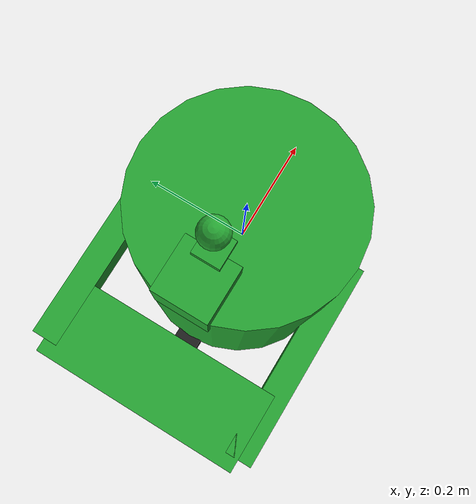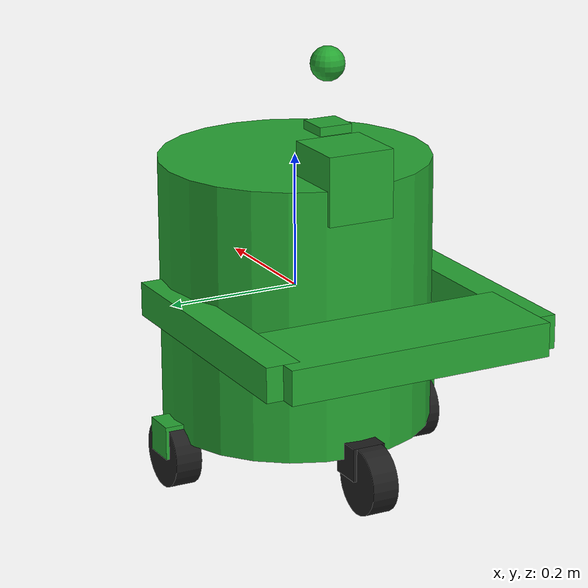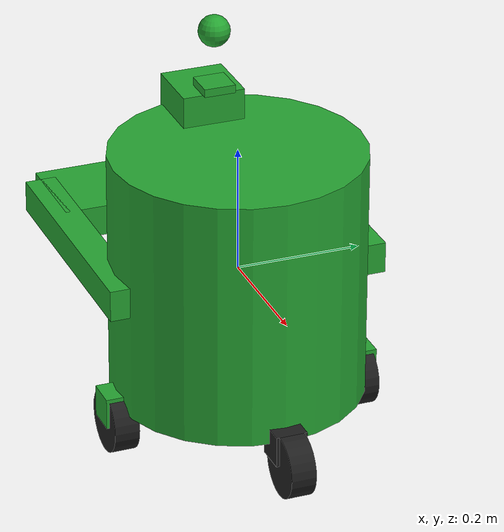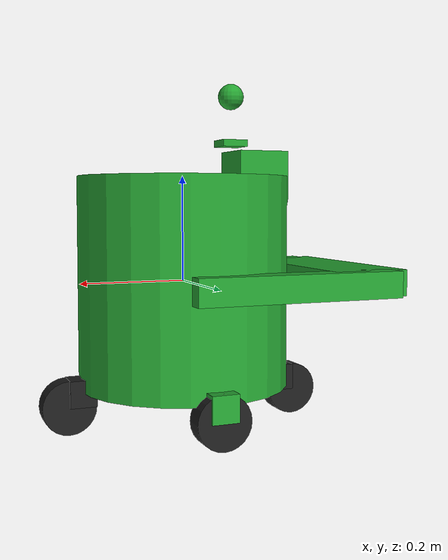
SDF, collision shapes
<?xml version='1.0'?>
<sdf version='1.6'>
  <model name='my_robot'>
    <link name='base_link'>
      <pose frame=''>0 0 0 0 -0 0</pose>
      <inertial>
        <pose frame=''>-0.028049 0 -0.047886 0 -0 0</pose>
        <mass>1.23</mass>
        <inertia>
          <ixx>0.0539737</ixx>
          <ixy>-1.94628e-19</ixy>
          <ixz>0.00406207</ixz>
          <iyy>0.0402643</iyy>
          <iyz>-3.32277e-19</iyz>
          <izz>0.043529</izz>
        </inertia>
      </inertial>
      <collision name='base_link_collision'>
        <pose frame=''>0 0 0 0 -0 0</pose>
        <geometry>
          <cylinder>
            <length>0.4</length>
            <radius>0.2</radius>
          </cylinder>
        </geometry>
        <surface>
          <contact>
            <ode/>
          </contact>
          <friction>
            <ode/>
          </friction>
        </surface>
      </collision>
      <collision name='base_link_fixed_joint_lump__camera_protrude_collision_1'>
        <pose frame=''>-0.1 0 0.265 0 -0 0</pose>
        <geometry>
          <box>
            <size>0.05 0.05 0.013</size>
          </box>
        </geometry>
        <surface>
          <contact>
            <ode/>
          </contact>
          <friction>
            <ode/>
          </friction>
        </surface>
      </collision>
      <collision name='base_link_fixed_joint_lump__camera_collision_2'>
        <pose frame=''>-0.1 0 0.355 0 -0 3.14</pose>
        <geometry>
          <sphere>
            <radius>0.025</radius>
          </sphere>
        </geometry>
        <surface>
          <contact>
            <ode/>
          </contact>
          <friction>
            <ode/>
          </friction>
        </surface>
      </collision>
      <collision name='base_link_fixed_joint_lump__left_castor_collision_3'>
        <pose frame=''>0 -0.2 -0.2 0 -0 0</pose>
        <geometry>
          <box>
            <size>0.05 0.05 0.05</size>
          </box>
        </geometry>
        <surface>
          <contact>
            <ode/>
          </contact>
          <friction>
            <ode/>
          </friction>
        </surface>
      </collision>
      <collision name='base_link_fixed_joint_lump__left_hand_collision_4'>
        <pose frame=''>-0.15 -0.2 0 0 -0 0</pose>
        <geometry>
          <box>
            <size>0.4 0.05 0.05</size>
          </box>
        </geometry>
        <surface>
          <contact>
            <ode/>
          </contact>
          <friction>
            <ode/>
          </friction>
        </surface>
      </collision>
      <collision name='base_link_fixed_joint_lump__lidar2D_collision_5'>
        <pose frame=''>-0.15 0 0.2 0 -0 3.14</pose>
        <geometry>
          <box>
            <size>0.1 0.1 0.1</size>
          </box>
        </geometry>
        <surface>
          <contact>
            <ode/>
          </contact>
          <friction>
            <ode/>
          </friction>
        </surface>
      </collision>
      <collision name='base_link_fixed_joint_lump__right_castor_collision_6'>
        <pose frame=''>0 0.2 -0.2 0 -0 0</pose>
        <geometry>
          <box>
            <size>0.05 0.05 0.05</size>
          </box>
        </geometry>
        <surface>
          <contact>
            <ode/>
          </contact>
          <friction>
            <ode/>
          </friction>
        </surface>
      </collision>
      <collision name='base_link_fixed_joint_lump__right_hand_collision_7'>
        <pose frame=''>-0.15 0.2 0 0 -0 0</pose>
        <geometry>
          <box>
            <size>0.4 0.05 0.05</size>
          </box>
        </geometry>
        <surface>
          <contact>
            <ode/>
          </contact>
          <friction>
            <ode/>
          </friction>
        </surface>
      </collision>
      <collision name='base_link_fixed_joint_lump__tray_collision_8'>
        <pose frame=''>-0.3 0 0 0 -0 0</pose>
        <geometry>
          <box>
            <size>0.15 0.4 0.05</size>
          </box>
        </geometry>
        <surface>
          <contact>
            <ode/>
          </contact>
          <friction>
            <ode/>
          </friction>
        </surface>
      </collision>
      <visual name='base_link_visual'>
        <pose frame=''>0 0 0 0 -0 0</pose>
        <geometry>
          <cylinder>
            <length>0.4</length>
            <radius>0.2</radius>
          </cylinder>
        </geometry>
        <material>
          <script>
            <name>Gazebo/Green</name>
            <uri>file://media/materials/scripts/gazebo.material</uri>
          </script>
        </material>
      </visual>
      <visual name='base_link_fixed_joint_lump__camera_protrude_visual_1'>
        <pose frame=''>-0.1 0 0.265 0 -0 0</pose>
        <geometry>
          <box>
            <size>0.05 0.05 0.13</size>
          </box>
        </geometry>
        <material>
          <script>
            <name>Gazebo/Blue</name>
            <uri>file://media/materials/scripts/gazebo.material</uri>
          </script>
        </material>
      </visual>
      <visual name='base_link_fixed_joint_lump__camera_visual_2'>
        <pose frame=''>-0.1 0 0.355 0 -0 3.14</pose>
        <geometry>
          <sphere>
            <radius>0.025</radius>
          </sphere>
        </geometry>
        <material>
          <script>
            <name>Gazebo/Yellow</name>
            <uri>file://media/materials/scripts/gazebo.material</uri>
          </script>
        </material>
      </visual>
      <visual name='base_link_fixed_joint_lump__left_castor_visual_3'>
        <pose frame=''>0 -0.2 -0.2 0 -0 0</pose>
        <geometry>
          <box>
            <size>0.05 0.05 0.05</size>
          </box>
        </geometry>
        <material>
          <script>
            <name>Gazebo/Black</name>
            <uri>file://media/materials/scripts/gazebo.material</uri>
          </script>
        </material>
      </visual>
      <visual name='base_link_fixed_joint_lump__left_hand_visual_4'>
        <pose frame=''>-0.15 -0.2 0 0 -0 0</pose>
        <geometry>
          <box>
            <size>0.4 0.05 0.05</size>
          </box>
        </geometry>
        <material>
          <script>
            <name>Gazebo/Orange</name>
            <uri>file://media/materials/scripts/gazebo.material</uri>
          </script>
        </material>
      </visual>
      <visual name='base_link_fixed_joint_lump__lidar2D_visual_5'>
        <pose frame=''>-0.15 0 0.2339 0 -0 3.14</pose>
        <geometry>
          <mesh>
            <scale>1 1 1</scale>
            <uri>model://ILRobot/meshes/lidar2D.dae</uri>
          </mesh>
        </geometry>
        <material>
          <script>
            <uri>__default__</uri>
            <name>__default__</name>
          </script>
        </material>
      </visual>
      <visual name='base_link_fixed_joint_lump__right_castor_visual_6'>
        <pose frame=''>0 0.2 -0.2 0 -0 0</pose>
        <geometry>
          <box>
            <size>0.05 0.05 0.05</size>
          </box>
        </geometry>
        <material>
          <script>
            <name>Gazebo/Black</name>
            <uri>file://media/materials/scripts/gazebo.material</uri>
          </script>
        </material>
      </visual>
      <visual name='base_link_fixed_joint_lump__right_hand_visual_7'>
        <pose frame=''>-0.15 0.2 0 0 -0 0</pose>
        <geometry>
          <box>
            <size>0.4 0.05 0.05</size>
          </box>
        </geometry>
        <material>
          <script>
            <name>Gazebo/Orange</name>
            <uri>file://media/materials/scripts/gazebo.material</uri>
          </script>
        </material>
      </visual>
      <visual name='base_link_fixed_joint_lump__tray_visual_8'>
        <pose frame=''>-0.3 0 0 0 -0 0</pose>
        <geometry>
          <box>
            <size>0.15 0.45 0.05</size>
          </box>
        </geometry>
        <material>
          <script>
            <name>Gazebo/Orange</name>
            <uri>file://media/materials/scripts/gazebo.material</uri>
          </script>
        </material>
      </visual>
      <velocity_decay/>
      <velocity_decay/>
      <velocity_decay/>
      <velocity_decay/>
      <sensor name='ILRobotcamera' type='camera'>
        <update_rate>30</update_rate>
        <camera name='head'>
          <horizontal_fov>1.39626</horizontal_fov>
          <image>
            <width>800</width>
            <height>800</height>
            <format>R8G8B8</format>
          </image>
          <clip>
            <near>0.02</near>
            <far>300</far>
          </clip>
        </camera>
        <plugin name='camera_controller' filename='libgazebo_ros_camera.so'>
          <alwaysOn>1</alwaysOn>
          <updateRate>0.0</updateRate>
          <cameraName>ILRobot/ILRobotcamera</cameraName>
          <imageTopicName>image_raw</imageTopicName>
          <cameraInfoTopicName>camera_info</cameraInfoTopicName>
          <frameName>camera</frameName>
          <hackBaseline>0.07</hackBaseline>
          <distortionK1>0.0</distortionK1>
          <distortionK2>0.0</distortionK2>
          <distortionK3>0.0</distortionK3>
          <distortionT1>0.0</distortionT1>
          <distortionT2>0.0</distortionT2>
        </plugin>
        <pose frame=''>-0.1 0 0.355 0 -0 3.14</pose>
      </sensor>
      <velocity_decay/>
      <velocity_decay/>
      <velocity_decay/>
      <sensor name='head_hokuyo_sensor' type='gpu_ray'>
        <visualize>0</visualize>
        <update_rate>40</update_rate>
        <ray>
          <scan>
            <horizontal>
              <samples>720</samples>
              <resolution>1</resolution>
              <min_angle>-1.5708</min_angle>
              <max_angle>1.5708</max_angle>
            </horizontal>
          </scan>
          <range>
            <min>0.1</min>
            <max>30</max>
            <resolution>0.01</resolution>
          </range>
          <noise>
            <type>gaussian</type>
            <mean>0</mean>
            <stddev>0.01</stddev>
          </noise>
        </ray>
        <plugin name='gazebo_ros_head_hokuyo_controller' filename='libgazebo_ros_gpu_laser.so'>
          <topicName>/ILRobot/laser/scan</topicName>
          <frameName>lidar2D</frameName>
        </plugin>
        <pose frame=''>-0.15 0 0.2 0 -0 3.14</pose>
      </sensor>
      <velocity_decay/>
      <velocity_decay/>
      <gravity>1</gravity>
      <velocity_decay/>
    </link>
    <link name='front_castor'>
      <pose frame=''>-0.2 0 -0.2 0 -0 0</pose>
      <inertial>
        <pose frame=''>0 0 0 0 -0 0</pose>
        <mass>0.2</mass>
        <inertia>
          <ixx>8.333e-05</ixx>
          <ixy>0</ixy>
          <ixz>0</ixz>
          <iyy>8.333e-05</iyy>
          <iyz>0</iyz>
          <izz>8.333e-05</izz>
        </inertia>
      </inertial>
      <collision name='front_castor_collision'>
        <pose frame=''>0 0 0 0 -0 0</pose>
        <geometry>
          <box>
            <size>0.05 0.05 0.05</size>
          </box>
        </geometry>
        <surface>
          <contact>
            <ode/>
          </contact>
          <friction>
            <ode/>
          </friction>
        </surface>
      </collision>
      <visual name='front_castor_visual'>
        <pose frame=''>0 0 0 0 -0 0</pose>
        <geometry>
          <box>
            <size>0.05 0.05 0.05</size>
          </box>
        </geometry>
        <material>
          <script>
            <name>Gazebo/Black</name>
            <uri>file://media/materials/scripts/gazebo.material</uri>
          </script>
        </material>
      </visual>
      <gravity>1</gravity>
      <velocity_decay/>
    </link>
    <joint name='front_castor_joint' type='revolute'>
      <child>front_castor</child>
      <parent>base_link</parent>
      <axis>
        <xyz>0 0 -1</xyz>
        <limit>
          <lower>-1e+16</lower>
          <upper>1e+16</upper>
        </limit>
        <dynamics>
          <spring_reference>0</spring_reference>
          <spring_stiffness>0</spring_stiffness>
        </dynamics>
        <use_parent_model_frame>1</use_parent_model_frame>
      </axis>
    </joint>
    <link name='front_wheel'>
      <pose frame=''>-0.225 0 -0.225 0 -0 0</pose>
      <inertial>
        <pose frame=''>0 0 0 0 -0 0</pose>
        <mass>0.2</mass>
        <inertia>
          <ixx>0.00015167</ixx>
          <ixy>0</ixy>
          <ixz>0</ixz>
          <iyy>0.00015167</iyy>
          <iyz>0</iyz>
          <izz>0.00015167</izz>
        </inertia>
      </inertial>
      <collision name='front_wheel_collision'>
        <pose frame=''>0 0 0 -1.57 0 0</pose>
        <geometry>
          <cylinder>
            <length>0.04</length>
            <radius>0.05</radius>
          </cylinder>
        </geometry>
        <surface>
          <contact>
            <ode/>
          </contact>
          <friction>
            <ode/>
          </friction>
        </surface>
      </collision>
      <visual name='front_wheel_visual'>
        <pose frame=''>0 0 0 -1.57 0 0</pose>
        <geometry>
          <cylinder>
            <length>0.04</length>
            <radius>0.05</radius>
          </cylinder>
        </geometry>
        <material>
          <script>
            <name>Gazebo/Black</name>
            <uri>file://media/materials/scripts/gazebo.material</uri>
          </script>
        </material>
      </visual>
      <gravity>1</gravity>
      <velocity_decay/>
    </link>
    <joint name='front_wheel_joint' type='revolute'>
      <child>front_wheel</child>
      <parent>front_castor</parent>
      <axis>
        <xyz>0 -1 0</xyz>
        <limit>
          <lower>-1e+16</lower>
          <upper>1e+16</upper>
        </limit>
        <dynamics>
          <spring_reference>0</spring_reference>
          <spring_stiffness>0</spring_stiffness>
        </dynamics>
        <use_parent_model_frame>1</use_parent_model_frame>
      </axis>
    </joint>
    <link name='left_wheel'>
      <pose frame=''>0 -0.2 -0.225 0 -0 0</pose>
      <inertial>
        <pose frame=''>0 0 0 0 -0 0</pose>
        <mass>0.2</mass>
        <inertia>
          <ixx>0.00015167</ixx>
          <ixy>0</ixy>
          <ixz>0</ixz>
          <iyy>0.00015167</iyy>
          <iyz>0</iyz>
          <izz>0.00015167</izz>
        </inertia>
      </inertial>
      <collision name='left_wheel_collision'>
        <pose frame=''>0 0 0 -1.57 0 0</pose>
        <geometry>
          <cylinder>
            <length>0.04</length>
            <radius>0.05</radius>
          </cylinder>
        </geometry>
        <surface>
          <contact>
            <ode/>
          </contact>
          <friction>
            <ode/>
          </friction>
        </surface>
      </collision>
      <visual name='left_wheel_visual'>
        <pose frame=''>0 0 0 -1.57 0 0</pose>
        <geometry>
          <cylinder>
            <length>0.04</length>
            <radius>0.05</radius>
          </cylinder>
        </geometry>
        <material>
          <script>
            <name>Gazebo/Black</name>
            <uri>file://media/materials/scripts/gazebo.material</uri>
          </script>
        </material>
      </visual>
      <gravity>1</gravity>
      <velocity_decay/>
    </link>
    <joint name='left_wheel_joint' type='revolute'>
      <child>left_wheel</child>
      <parent>base_link</parent>
      <axis>
        <xyz>0 -1 0</xyz>
        <limit>
          <lower>-1e+16</lower>
          <upper>1e+16</upper>
        </limit>
        <dynamics>
          <spring_reference>0</spring_reference>
          <spring_stiffness>0</spring_stiffness>
        </dynamics>
        <use_parent_model_frame>1</use_parent_model_frame>
      </axis>
    </joint>
    <link name='rear_castor'>
      <pose frame=''>0.2 0 -0.2 0 -0 0</pose>
      <inertial>
        <pose frame=''>0 0 0 0 -0 0</pose>
        <mass>0.2</mass>
        <inertia>
          <ixx>8.333e-05</ixx>
          <ixy>0</ixy>
          <ixz>0</ixz>
          <iyy>8.333e-05</iyy>
          <iyz>0</iyz>
          <izz>8.333e-05</izz>
        </inertia>
      </inertial>
      <collision name='rear_castor_collision'>
        <pose frame=''>0 0 0 0 -0 0</pose>
        <geometry>
          <box>
            <size>0.05 0.05 0.05</size>
          </box>
        </geometry>
        <surface>
          <contact>
            <ode/>
          </contact>
          <friction>
            <ode/>
          </friction>
        </surface>
      </collision>
      <visual name='rear_castor_visual'>
        <pose frame=''>0 0 0 0 -0 0</pose>
        <geometry>
          <box>
            <size>0.05 0.05 0.05</size>
          </box>
        </geometry>
        <material>
          <script>
            <name>Gazebo/Black</name>
            <uri>file://media/materials/scripts/gazebo.material</uri>
          </script>
        </material>
      </visual>
      <gravity>1</gravity>
      <velocity_decay/>
    </link>
    <joint name='rear_castor_joint' type='revolute'>
      <child>rear_castor</child>
      <parent>base_link</parent>
      <axis>
        <xyz>0 0 -1</xyz>
        <limit>
          <lower>-1e+16</lower>
          <upper>1e+16</upper>
        </limit>
        <dynamics>
          <spring_reference>0</spring_reference>
          <spring_stiffness>0</spring_stiffness>
        </dynamics>
        <use_parent_model_frame>1</use_parent_model_frame>
      </axis>
    </joint>
    <link name='rear_wheel'>
      <pose frame=''>0.225 0 -0.225 0 -0 0</pose>
      <inertial>
        <pose frame=''>0 0 0 0 -0 0</pose>
        <mass>0.2</mass>
        <inertia>
          <ixx>0.00015167</ixx>
          <ixy>0</ixy>
          <ixz>0</ixz>
          <iyy>0.00015167</iyy>
          <iyz>0</iyz>
          <izz>0.00015167</izz>
        </inertia>
      </inertial>
      <collision name='rear_wheel_collision'>
        <pose frame=''>0 0 0 -1.57 0 0</pose>
        <geometry>
          <cylinder>
            <length>0.04</length>
            <radius>0.05</radius>
          </cylinder>
        </geometry>
        <surface>
          <contact>
            <ode/>
          </contact>
          <friction>
            <ode/>
          </friction>
        </surface>
      </collision>
      <visual name='rear_wheel_visual'>
        <pose frame=''>0 0 0 -1.57 0 0</pose>
        <geometry>
          <cylinder>
            <length>0.04</length>
            <radius>0.05</radius>
          </cylinder>
        </geometry>
        <material>
          <script>
            <name>Gazebo/Black</name>
            <uri>file://media/materials/scripts/gazebo.material</uri>
          </script>
        </material>
      </visual>
      <gravity>1</gravity>
      <velocity_decay/>
    </link>
    <joint name='rear_wheel_joint' type='revolute'>
      <child>rear_wheel</child>
      <parent>rear_castor</parent>
      <axis>
        <xyz>0 -1 0</xyz>
        <limit>
          <lower>-1e+16</lower>
          <upper>1e+16</upper>
        </limit>
        <dynamics>
          <spring_reference>0</spring_reference>
          <spring_stiffness>0</spring_stiffness>
        </dynamics>
        <use_parent_model_frame>1</use_parent_model_frame>
      </axis>
    </joint>
    <link name='right_wheel'>
      <pose frame=''>0 0.2 -0.225 0 -0 0</pose>
      <inertial>
        <pose frame=''>0 0 0 0 -0 0</pose>
        <mass>0.2</mass>
        <inertia>
          <ixx>0.00015167</ixx>
          <ixy>0</ixy>
          <ixz>0</ixz>
          <iyy>0.00015167</iyy>
          <iyz>0</iyz>
          <izz>0.00015167</izz>
        </inertia>
      </inertial>
      <collision name='right_wheel_collision'>
        <pose frame=''>0 0 0 -1.57 0 0</pose>
        <geometry>
          <cylinder>
            <length>0.04</length>
            <radius>0.05</radius>
          </cylinder>
        </geometry>
        <surface>
          <contact>
            <ode/>
          </contact>
          <friction>
            <ode/>
          </friction>
        </surface>
      </collision>
      <visual name='right_wheel_visual'>
        <pose frame=''>0 0 0 -1.57 0 0</pose>
        <geometry>
          <cylinder>
            <length>0.04</length>
            <radius>0.05</radius>
          </cylinder>
        </geometry>
        <material>
          <script>
            <name>Gazebo/Black</name>
            <uri>file://media/materials/scripts/gazebo.material</uri>
          </script>
        </material>
      </visual>
      <gravity>1</gravity>
      <velocity_decay/>
    </link>
    <joint name='right_wheel_joint' type='revolute'>
      <child>right_wheel</child>
      <parent>base_link</parent>
      <axis>
        <xyz>0 -1 0</xyz>
        <limit>
          <lower>-1e+16</lower>
          <upper>1e+16</upper>
        </limit>
        <dynamics>
          <spring_reference>0</spring_reference>
          <spring_stiffness>0</spring_stiffness>
        </dynamics>
        <use_parent_model_frame>1</use_parent_model_frame>
      </axis>
    </joint>
    <static>0</static>
    <plugin name='differential_drive_controller' filename='libgazebo_ros_diff_drive.so'>
      <legacyMode>0</legacyMode>
      <alwaysOn>1</alwaysOn>
      <leftJoint>left_wheel_joint</leftJoint>
      <rightJoint>right_wheel_joint</rightJoint>
      <robotBaseFrame>base_link</robotBaseFrame>
      <wheelSeparation>0.4</wheelSeparation>
      <wheelDiameter>0.1</wheelDiameter>
      <publishWheelJointState>1</publishWheelJointState>
      <torque>10</torque>
      <commandTopic>cmd_vel</commandTopic>
      <odometryTopic>odom</odometryTopic>
      <odometryFrame>odom</odometryFrame>
      <robotBaseFrame>base_link</robotBaseFrame>
    </plugin>
  </model>
</sdf>
